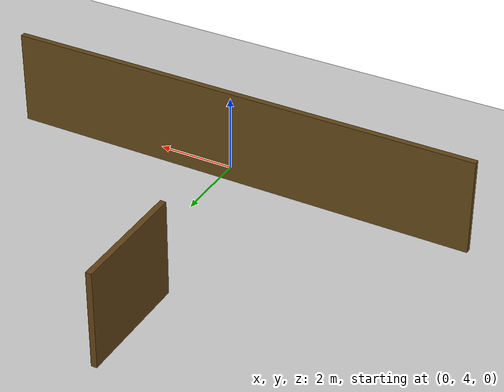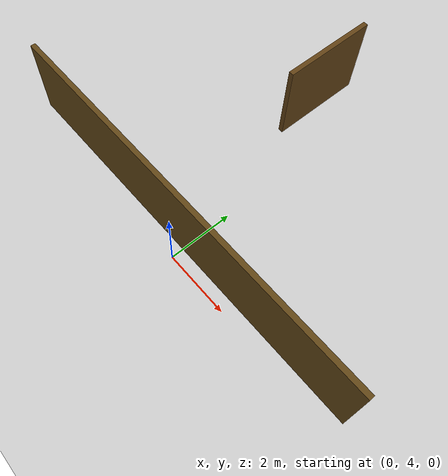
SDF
<sdf version="1.6">
 <world name="default">
  <model name="ground_plane">
   <static>1</static>
   <link name="link">
    <collision name="collision">
     <geometry><plane><normal>0 0 1</normal><size>100 100</size></plane></geometry>
     <surface>
      <contact><collide_bitmask>65535</collide_bitmask></contact>
      <friction><ode><mu>100</mu><mu2>50</mu2></ode></friction>
     </surface>
    </collision>
    <visual name="visual">
     <cast_shadows>0</cast_shadows>
     <geometry><plane><normal>0 0 1</normal><size>100 100</size></plane></geometry>
     <material>
      <script><uri>file://media/materials/scripts/gazebo.material</uri><name>Gazebo/Grey</name></script>
     </material>
    </visual>
   </link>
  </model>
  <model name="BuildMyWorld">
   <pose>-3.99019 0.7838 0 0 -0 0</pose>
   <link name="Wall_66">
    <collision name="Wall_66_Collision">
     <geometry><box><size>3 0.15 2.5</size></box></geometry>
     <pose>0 0 1.25 0 -0 0</pose>
    </collision>
    <visual name="Wall_66_Visual">
     <pose>0 0 1.25 0 -0 0</pose>
     <geometry><box><size>3 0.15 2.5</size></box></geometry>
     <material>
      <script><uri>file://media/materials/scripts/gazebo.material</uri><name>Gazebo/Grey</name></script>
      <ambient>0.384314 0.258824 0.0823529 1</ambient>
     </material>
     <meta><layer>0</layer></meta>
    </visual>
    <pose>2.77475 9.92937 0 0 -0 1.5708</pose>
   </link>
   <link name="Wall_83">
    <collision name="Wall_83_Collision">
     <geometry><box><size>12.5 0.15 2.5</size></box></geometry>
     <pose>0 0 1.25 0 -0 0</pose>
    </collision>
    <visual name="Wall_83_Visual">
     <pose>0 0 1.25 0 -0 0</pose>
     <geometry><box><size>12.5 0.15 2.5</size></box></geometry>
     <material>
      <script><uri>file://media/materials/scripts/gazebo.material</uri><name>Gazebo/Grey</name></script>
      <ambient>0.384314 0.27451 0.0862745 1</ambient>
     </material>
     <meta><layer>0</layer></meta>
    </visual>
    <pose>3.59865 3.66204 0 0 -0 0</pose>
   </link>
   <static>1</static>
  </model>
 </world>
</sdf>
